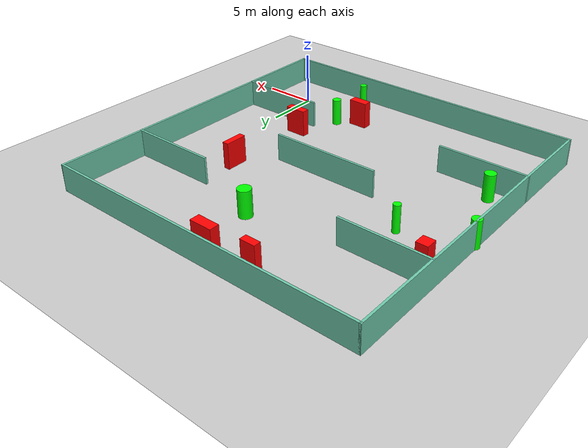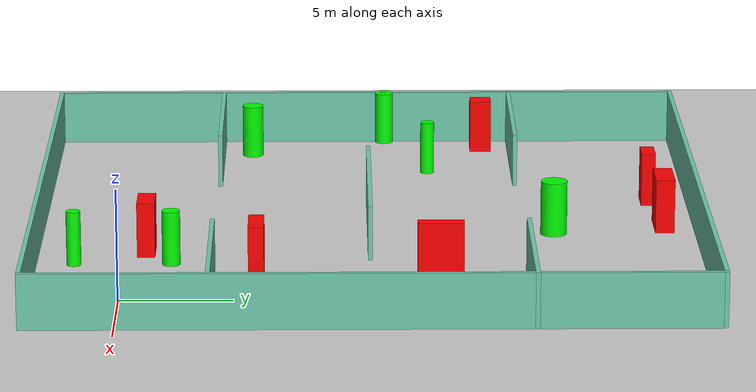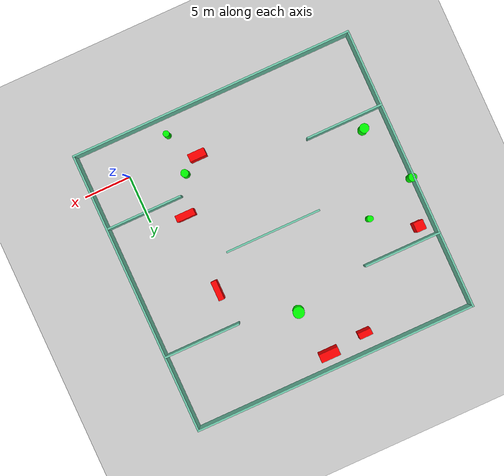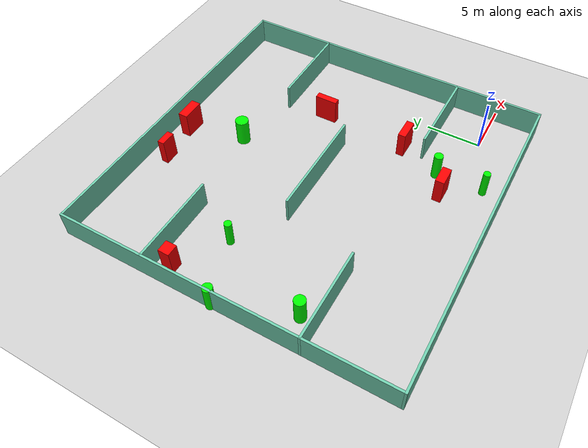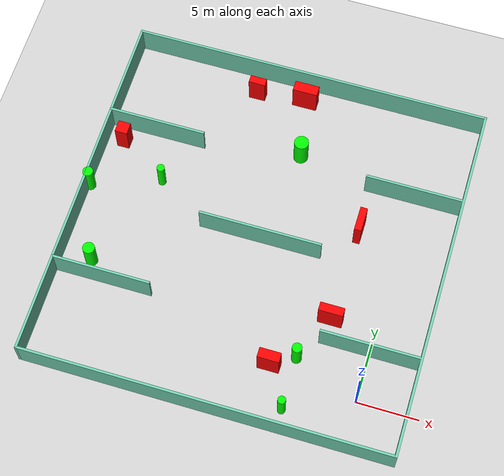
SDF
<sdf version="1.7">
 <world name="default">
  <light name="sun" type="directional">
   <pose>0 0 10 0 -0 0</pose>
   <diffuse>0.8 0.8 0.8 1</diffuse>
   <specular>0.2 0.2 0.2 1</specular>
   <attenuation>
    <range>1000</range>
    <constant>0.9</constant>
    <linear>0.01</linear>
    <quadratic>0.001</quadratic>
   </attenuation>
   <direction>-0.5 0.1 -0.9</direction>
   <spot><inner_angle>0</inner_angle><outer_angle>0</outer_angle><falloff>0</falloff></spot>
  </light>
  <model name="ground_plane">
   <static>1</static>
   <link name="link">
    <collision name="collision">
     <geometry><plane><normal>0 0 1</normal><size>100 100</size></plane></geometry>
     <surface>
      <contact><collide_bitmask>65535</collide_bitmask></contact>
      <friction><ode><mu>100</mu><mu2>50</mu2></ode></friction>
     </surface>
    </collision>
    <visual name="visual">
     <cast_shadows>0</cast_shadows>
     <geometry><plane><normal>0 0 1</normal><size>100 100</size></plane></geometry>
     <material>
      <script><uri>file://media/materials/scripts/gazebo.material</uri><name>Gazebo/Grey</name></script>
     </material>
    </visual>
   </link>
  </model>
  <gravity>0 0 -9.8</gravity>
  <magnetic_field>6e-06 2.3e-05 -4.2e-05</magnetic_field>
  <atmosphere type="adiabatic"/>
  <physics type="ode">
   <max_step_size>0.001</max_step_size>
   <real_time_factor>1</real_time_factor>
   <real_time_update_rate>1000</real_time_update_rate>
  </physics>
  <scene><ambient>0.4 0.4 0.4 1</ambient><background>0.7 0.7 0.7 1</background><shadows>1</shadows></scene>
  <spherical_coordinates>
   <surface_model>EARTH_WGS84</surface_model>
   <latitude_deg>0</latitude_deg>
   <longitude_deg>0</longitude_deg>
   <elevation>0</elevation>
   <heading_deg>0</heading_deg>
  </spherical_coordinates>
  <model name="my_base_walls">
   <link name="Wall_10">
    <collision name="Wall_10_Collision">
     <geometry><box><size>8.2 0.2 2.5</size></box></geometry>
     <pose>0 0 1.25 0 -0 0</pose>
    </collision>
    <visual name="Wall_10_Visual">
     <pose>0 0 1.25 0 -0 0</pose>
     <geometry><box><size>8.2 0.2 2.5</size></box></geometry>
     <material>
      <script><uri>file://media/materials/scripts/gazebo.material</uri><name>Gazebo/Grey</name></script>
      <ambient>0.435294 0.796078 0.67451 1</ambient>
     </material>
     <meta><layer>0</layer></meta>
    </visual>
    <pose>-11 -7 0 0 -0 0</pose>
   </link>
   <link name="Wall_12">
    <collision name="Wall_12_Collision">
     <geometry><box><size>8.2 0.2 2.5</size></box></geometry>
     <pose>0 0 1.25 0 -0 0</pose>
    </collision>
    <visual name="Wall_12_Visual">
     <pose>0 0 1.25 0 -0 0</pose>
     <geometry><box><size>8.2 0.2 2.5</size></box></geometry>
     <material>
      <script><uri>file://media/materials/scripts/gazebo.material</uri><name>Gazebo/Grey</name></script>
      <ambient>0.435294 0.796078 0.67451 1</ambient>
     </material>
     <meta><layer>0</layer></meta>
    </visual>
    <pose>-11 7 0 0 -0 0</pose>
   </link>
   <link name="Wall_14">
    <collision name="Wall_14_Collision">
     <geometry><box><size>8.2 0.2 2.5</size></box></geometry>
     <pose>0 0 1.25 0 -0 0</pose>
    </collision>
    <visual name="Wall_14_Visual">
     <pose>0 0 1.25 0 -0 0</pose>
     <geometry><box><size>8.2 0.2 2.5</size></box></geometry>
     <material>
      <script><uri>file://media/materials/scripts/gazebo.material</uri><name>Gazebo/Grey</name></script>
      <ambient>0.435294 0.796078 0.67451 1</ambient>
     </material>
     <meta><layer>0</layer></meta>
    </visual>
    <pose>11 7 0 0 -0 3.14159</pose>
   </link>
   <link name="Wall_16">
    <collision name="Wall_16_Collision">
     <geometry><box><size>10.2 0.2 2.5</size></box></geometry>
     <pose>0 0 1.25 0 -0 0</pose>
    </collision>
    <visual name="Wall_16_Visual">
     <pose>0 0 1.25 0 -0 0</pose>
     <geometry><box><size>10.2 0.2 2.5</size></box></geometry>
     <material>
      <script><uri>file://media/materials/scripts/gazebo.material</uri><name>Gazebo/Grey</name></script>
      <ambient>0.435294 0.796078 0.67451 1</ambient>
     </material>
     <meta><layer>0</layer></meta>
    </visual>
    <pose>0 0 0 0 -0 3.14159</pose>
   </link>
   <link name="Wall_2">
    <collision name="Wall_2_Collision">
     <geometry><box><size>30.2 0.2 2.5</size></box></geometry>
     <pose>0 0 1.25 0 -0 0</pose>
    </collision>
    <visual name="Wall_2_Visual">
     <pose>0 0 1.25 0 -0 0</pose>
     <geometry><box><size>30.2 0.2 2.5</size></box></geometry>
     <material>
      <script><uri>file://media/materials/scripts/gazebo.material</uri><name>Gazebo/Grey</name></script>
      <ambient>0.435294 0.796078 0.67451 1</ambient>
     </material>
     <meta><layer>0</layer></meta>
    </visual>
    <pose>0 -15 0 0 -0 3.14159</pose>
   </link>
   <link name="Wall_3">
    <collision name="Wall_3_Collision">
     <geometry><box><size>30.2 0.2 2.5</size></box></geometry>
     <pose>0 0 1.25 0 -0 0</pose>
    </collision>
    <visual name="Wall_3_Visual">
     <pose>0 0 1.25 0 -0 0</pose>
     <geometry><box><size>30.2 0.2 2.5</size></box></geometry>
     <material>
      <script><uri>file://media/materials/scripts/gazebo.material</uri><name>Gazebo/Grey</name></script>
      <ambient>0.435294 0.796078 0.67451 1</ambient>
     </material>
     <meta><layer>0</layer></meta>
    </visual>
    <pose>-15 0 0 0 -0 1.5708</pose>
   </link>
   <link name="Wall_4">
    <collision name="Wall_4_Collision">
     <geometry><box><size>30.2 0.2 2.5</size></box></geometry>
     <pose>0 0 1.25 0 -0 0</pose>
    </collision>
    <visual name="Wall_4_Visual">
     <pose>0 0 1.25 0 -0 0</pose>
     <geometry><box><size>30.2 0.2 2.5</size></box></geometry>
     <material>
      <script><uri>file://media/materials/scripts/gazebo.material</uri><name>Gazebo/Grey</name></script>
      <ambient>0.435294 0.796078 0.67451 1</ambient>
     </material>
     <meta><layer>0</layer></meta>
    </visual>
    <pose>0 15 0 0 -0 0</pose>
   </link>
   <link name="Wall_6">
    <collision name="Wall_6_Collision">
     <geometry><box><size>30.2 0.2 2.5</size></box></geometry>
     <pose>0 0 1.25 0 -0 0</pose>
    </collision>
    <visual name="Wall_6_Visual">
     <pose>0 0 1.25 0 -0 0</pose>
     <geometry><box><size>30.2 0.2 2.5</size></box></geometry>
     <material>
      <script><uri>file://media/materials/scripts/gazebo.material</uri><name>Gazebo/Grey</name></script>
      <ambient>0.435294 0.796078 0.67451 1</ambient>
     </material>
     <meta><layer>0</layer></meta>
    </visual>
    <pose>15 0 0 0 -0 1.5708</pose>
   </link>
   <link name="Wall_8">
    <collision name="Wall_8_Collision">
     <geometry><box><size>8.2 0.2 2.5</size></box></geometry>
     <pose>0 0 1.25 0 -0 0</pose>
    </collision>
    <visual name="Wall_8_Visual">
     <pose>0 0 1.25 0 -0 0</pose>
     <geometry><box><size>8.2 0.2 2.5</size></box></geometry>
     <material>
      <script><uri>file://media/materials/scripts/gazebo.material</uri><name>Gazebo/Grey</name></script>
      <ambient>0.435294 0.796078 0.67451 1</ambient>
     </material>
     <meta><layer>0</layer></meta>
    </visual>
    <pose>11 -7 0 0 -0 3.14159</pose>
   </link>
   <static>1</static>
   <pose>-11 11 0 0 -0 0</pose>
  </model>
  <model name="cylinder1">
   <static>1</static>
   <link name="link">
    <inertial>
     <mass>1</mass>
     <inertia><ixx>0.5</ixx><ixy>0</ixy><ixz>0</ixz><iyy>0.5</iyy><iyz>0</iyz><izz>1</izz></inertia>
    </inertial>
    <collision name="collision">
     <geometry><cylinder><radius>0.40560838758376766</radius><length>2.5</length></cylinder></geometry>
    </collision>
    <visual name="visual">
     <geometry><cylinder><radius>0.40560838758376766</radius><length>2.5</length></cylinder></geometry>
     <material>
      <ambient>0 1 0 1</ambient>
      <diffuse>0 1 0 1</diffuse>
      <specular>0.1 0.1 0.1 1</specular>
      <emissive>0 0 0 0</emissive>
     </material>
    </visual>
   </link>
   <pose>-5.370837587374655 2.1132101363183047 1.25 0 0 0</pose>
  </model>
  <model name="cylinder2">
   <static>1</static>
   <link name="link">
    <inertial>
     <mass>1</mass>
     <inertia><ixx>0.5</ixx><ixy>0</ixy><ixz>0</ixz><iyy>0.5</iyy><iyz>0</iyz><izz>1</izz></inertia>
    </inertial>
    <collision name="collision">
     <geometry><cylinder><radius>0.4958534614513411</radius><length>2.5</length></cylinder></geometry>
    </collision>
    <visual name="visual">
     <geometry><cylinder><radius>0.4958534614513411</radius><length>2.5</length></cylinder></geometry>
     <material>
      <ambient>0 1 0 1</ambient>
      <diffuse>0 1 0 1</diffuse>
      <specular>0.1 0.1 0.1 1</specular>
      <emissive>0 0 0 0</emissive>
     </material>
    </visual>
   </link>
   <pose>-23.486061957334364 5.456075706772536 1.25 0 0 0</pose>
  </model>
  <model name="cylinder3">
   <static>1</static>
   <link name="link">
    <inertial>
     <mass>1</mass>
     <inertia><ixx>0.5</ixx><ixy>0</ixy><ixz>0</ixz><iyy>0.5</iyy><iyz>0</iyz><izz>1</izz></inertia>
    </inertial>
    <collision name="collision">
     <geometry><cylinder><radius>0.3235989435058743</radius><length>2.5</length></cylinder></geometry>
    </collision>
    <visual name="visual">
     <geometry><cylinder><radius>0.3235989435058743</radius><length>2.5</length></cylinder></geometry>
     <material>
      <ambient>0 1 0 1</ambient>
      <diffuse>0 1 0 1</diffuse>
      <specular>0.1 0.1 0.1 1</specular>
      <emissive>0 0 0 0</emissive>
     </material>
    </visual>
   </link>
   <pose>-5.327017645515468 -2.230396867125604 1.25 0 0 0</pose>
  </model>
  <model name="cylinder4">
   <static>1</static>
   <link name="link">
    <inertial>
     <mass>1</mass>
     <inertia><ixx>0.5</ixx><ixy>0</ixy><ixz>0</ixz><iyy>0.5</iyy><iyz>0</iyz><izz>1</izz></inertia>
    </inertial>
    <collision name="collision">
     <geometry><cylinder><radius>0.6034268663439015</radius><length>2.5</length></cylinder></geometry>
    </collision>
    <visual name="visual">
     <geometry><cylinder><radius>0.6034268663439015</radius><length>2.5</length></cylinder></geometry>
     <material>
      <ambient>0 1 0 1</ambient>
      <diffuse>0 1 0 1</diffuse>
      <specular>0.1 0.1 0.1 1</specular>
      <emissive>0 0 0 0</emissive>
     </material>
    </visual>
   </link>
   <pose>-9.964834797822748 19.427109614537653 1.25 0 0 0</pose>
  </model>
  <model name="cylinder5">
   <static>1</static>
   <link name="link">
    <inertial>
     <mass>1</mass>
     <inertia><ixx>0.5</ixx><ixy>0</ixy><ixz>0</ixz><iyy>0.5</iyy><iyz>0</iyz><izz>1</izz></inertia>
    </inertial>
    <collision name="collision">
     <geometry><cylinder><radius>0.4286710084044499</radius><length>2.5</length></cylinder></geometry>
    </collision>
    <visual name="visual">
     <geometry><cylinder><radius>0.4286710084044499</radius><length>2.5</length></cylinder></geometry>
     <material>
      <ambient>0 1 0 1</ambient>
      <diffuse>0 1 0 1</diffuse>
      <specular>0.1 0.1 0.1 1</specular>
      <emissive>0 0 0 0</emissive>
     </material>
    </visual>
   </link>
   <pose>-25.860482780796332 11.881476053837128 1.25 0 0 0</pose>
  </model>
  <model name="cylinder6">
   <static>1</static>
   <link name="link">
    <inertial>
     <mass>1</mass>
     <inertia><ixx>0.5</ixx><ixy>0</ixy><ixz>0</ixz><iyy>0.5</iyy><iyz>0</iyz><izz>1</izz></inertia>
    </inertial>
    <collision name="collision">
     <geometry><cylinder><radius>0.32483807503634016</radius><length>2.5</length></cylinder></geometry>
    </collision>
    <visual name="visual">
     <geometry><cylinder><radius>0.32483807503634016</radius><length>2.5</length></cylinder></geometry>
     <material>
      <ambient>0 1 0 1</ambient>
      <diffuse>0 1 0 1</diffuse>
      <specular>0.1 0.1 0.1 1</specular>
      <emissive>0 0 0 0</emissive>
     </material>
    </visual>
   </link>
   <pose>-20.29597803991145 13.883524982118903 1.25 0 0 0</pose>
  </model>
  <model name="box1">
   <static>1</static>
   <link name="link">
    <inertial>
     <mass>1</mass>
     <inertia><ixx>0.083</ixx><ixy>0</ixy><ixz>0</ixz><iyy>0.083</iyy><iyz>0</iyz><izz>0.083</izz></inertia>
    </inertial>
    <collision name="collision">
     <geometry><box><size>1.0381047950987405 1.0142049845487369 2.5</size></box></geometry>
    </collision>
    <visual name="visual">
     <geometry><box><size>1.0381047950987405 1.0142049845487369 2.5</size></box></geometry>
     <material>
      <ambient>1 0 0 1</ambient>
      <diffuse>1 0 0 1</diffuse>
      <specular>0.1 0.1 0.1 1</specular>
      <emissive>0 0 0 0</emissive>
     </material>
    </visual>
    <sensor name="my_contact" type="contact">
     <contact><collision>box_collision</collision><topic>__default_topic__</topic></contact>
    </sensor>
   </link>
   <pose>-24.491386018765862 16.58463060461213 1.25 0 0 0</pose>
  </model>
  <model name="box2">
   <static>1</static>
   <link name="link">
    <inertial>
     <mass>1</mass>
     <inertia><ixx>0.083</ixx><ixy>0</ixy><ixz>0</ixz><iyy>0.083</iyy><iyz>0</iyz><izz>0.083</izz></inertia>
    </inertial>
    <collision name="collision">
     <geometry><box><size>2.068122357335283 0.8740321325515803 2.5</size></box></geometry>
    </collision>
    <visual name="visual">
     <geometry><box><size>2.068122357335283 0.8740321325515803 2.5</size></box></geometry>
     <material>
      <ambient>1 0 0 1</ambient>
      <diffuse>1 0 0 1</diffuse>
      <specular>0.1 0.1 0.1 1</specular>
      <emissive>0 0 0 0</emissive>
     </material>
    </visual>
    <sensor name="my_contact" type="contact">
     <contact><collision>box_collision</collision><topic>__default_topic__</topic></contact>
    </sensor>
   </link>
   <pose>-11.018247171457599 24.53229973114962 1.25 0 0 0</pose>
  </model>
  <model name="box3">
   <static>1</static>
   <link name="link">
    <inertial>
     <mass>1</mass>
     <inertia><ixx>0.083</ixx><ixy>0</ixy><ixz>0</ixz><iyy>0.083</iyy><iyz>0</iyz><izz>0.083</izz></inertia>
    </inertial>
    <collision name="collision">
     <geometry><box><size>1.9874941041624505 0.7005833758081568 2.5</size></box></geometry>
    </collision>
    <visual name="visual">
     <geometry><box><size>1.9874941041624505 0.7005833758081568 2.5</size></box></geometry>
     <material>
      <ambient>1 0 0 1</ambient>
      <diffuse>1 0 0 1</diffuse>
      <specular>0.1 0.1 0.1 1</specular>
      <emissive>0 0 0 0</emissive>
     </material>
    </visual>
    <sensor name="my_contact" type="contact">
     <contact><collision>box_collision</collision><topic>__default_topic__</topic></contact>
    </sensor>
   </link>
   <pose>-3.685682651388692 5.936278422670869 1.25 0 0 0</pose>
  </model>
  <model name="box4">
   <static>1</static>
   <link name="link">
    <inertial>
     <mass>1</mass>
     <inertia><ixx>0.083</ixx><ixy>0</ixy><ixz>0</ixz><iyy>0.083</iyy><iyz>0</iyz><izz>0.083</izz></inertia>
    </inertial>
    <collision name="collision">
     <geometry><box><size>1.764316319439151 0.8042046486580923 2.5</size></box></geometry>
    </collision>
    <visual name="visual">
     <geometry><box><size>1.764316319439151 0.8042046486580923 2.5</size></box></geometry>
     <material>
      <ambient>1 0 0 1</ambient>
      <diffuse>1 0 0 1</diffuse>
      <specular>0.1 0.1 0.1 1</specular>
      <emissive>0 0 0 0</emissive>
     </material>
    </visual>
    <sensor name="my_contact" type="contact">
     <contact><collision>box_collision</collision><topic>__default_topic__</topic></contact>
    </sensor>
   </link>
   <pose>-7.245063483296599 0.9420001674998022 1.25 0 0 0</pose>
  </model>
  <model name="box5">
   <static>1</static>
   <link name="link">
    <inertial>
     <mass>1</mass>
     <inertia><ixx>0.083</ixx><ixy>0</ixy><ixz>0</ixz><iyy>0.083</iyy><iyz>0</iyz><izz>0.083</izz></inertia>
    </inertial>
    <collision name="collision">
     <geometry><box><size>1.402039007493281 0.6463484622473215 2.5</size></box></geometry>
    </collision>
    <visual name="visual">
     <geometry><box><size>1.402039007493281 0.6463484622473215 2.5</size></box></geometry>
     <material>
      <ambient>1 0 0 1</ambient>
      <diffuse>1 0 0 1</diffuse>
      <specular>0.1 0.1 0.1 1</specular>
      <emissive>0 0 0 0</emissive>
     </material>
    </visual>
    <sensor name="my_contact" type="contact">
     <contact><collision>box_collision</collision><topic>__default_topic__</topic></contact>
    </sensor>
   </link>
   <pose>-15.104512728433043 24.096871946336393 1.25 0 0 0</pose>
  </model>
  <model name="box6">
   <static>1</static>
   <link name="link">
    <inertial>
     <mass>1</mass>
     <inertia><ixx>0.083</ixx><ixy>0</ixy><ixz>0</ixz><iyy>0.083</iyy><iyz>0</iyz><izz>0.083</izz></inertia>
    </inertial>
    <collision name="collision">
     <geometry><box><size>0.5928552087591179 2.0565116377201464 2.5</size></box></geometry>
    </collision>
    <visual name="visual">
     <geometry><box><size>0.5928552087591179 2.0565116377201464 2.5</size></box></geometry>
     <material>
      <ambient>1 0 0 1</ambient>
      <diffuse>1 0 0 1</diffuse>
      <specular>0.1 0.1 0.1 1</specular>
      <emissive>0 0 0 0</emissive>
     </material>
    </visual>
    <sensor name="my_contact" type="contact">
     <contact><collision>box_collision</collision><topic>__default_topic__</topic></contact>
    </sensor>
   </link>
   <pose>-3.5075672627549395 14.096206948216981 1.25 0 0 0</pose>
  </model>
 </world>
</sdf>
